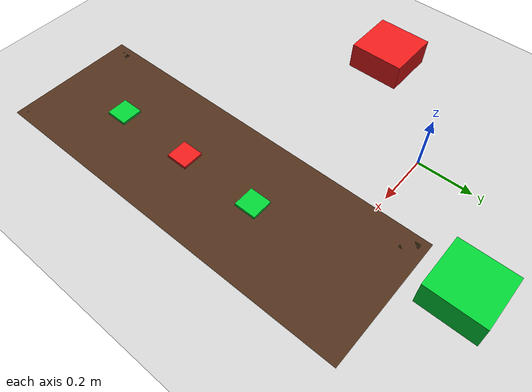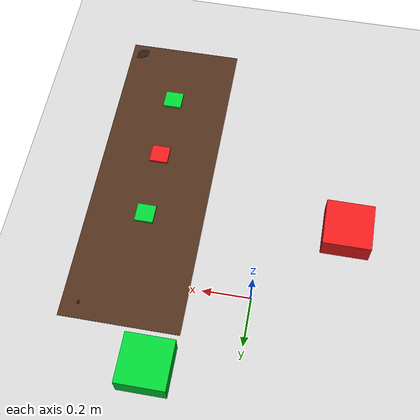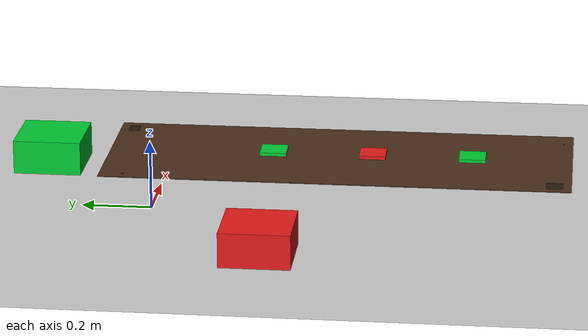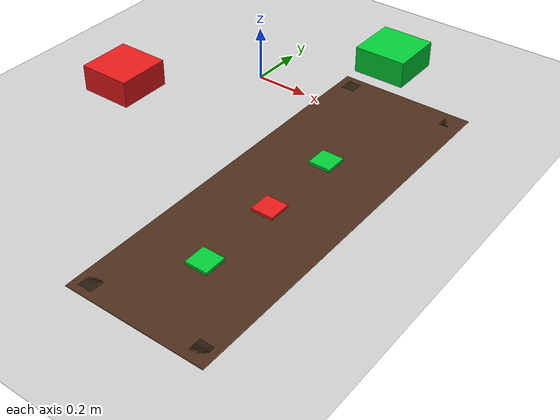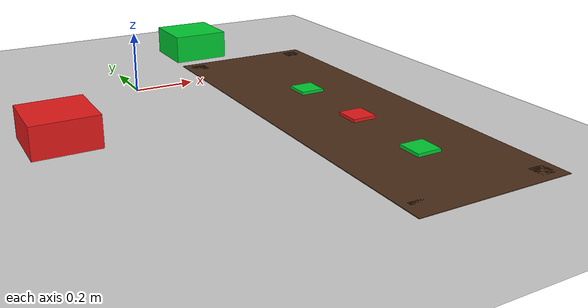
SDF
<?xml version="1.0"?>
<sdf version="1.9">
  <world name="inspectra_world">
    <physics name="1ms" type="ignored">
      <max_step_size>0.001</max_step_size>
      <real_time_factor>1.0</real_time_factor>
    </physics>
    <plugin filename="gz-sim-physics-system" name="gz::sim::systems::Physics"/>
    <plugin filename="gz-sim-scene-broadcaster-system" name="gz::sim::systems::SceneBroadcaster"/>
    <plugin filename="gz-sim-user-commands-system" name="gz::sim::systems::UserCommands"/>
    <plugin filename="gz-sim-sensors-system" name="gz::sim::systems::Sensors">
      <render_engine>ogre2</render_engine>
    </plugin>

    <light type="directional" name="sun">
      <cast_shadows>true</cast_shadows>
      <pose>0 0 10 0 0 0</pose>
      <diffuse>0.9 0.9 0.85 1</diffuse>
      <specular>0.3 0.3 0.3 1</specular>
      <direction>-0.5 0.1 -0.9</direction>
    </light>

    <!-- Fill light: softens harsh shadows from the main sun light,
         angled toward the robot/conveyor area for a more "rendered" look -->
    <light type="point" name="fill_light">
      <pose>1.2 -0.8 1.8 0 0 0</pose>
      <diffuse>0.5 0.5 0.55 1</diffuse>
      <specular>0.1 0.1 0.1 1</specular>
      <attenuation>
        <range>8</range>
        <constant>0.3</constant>
        <linear>0.2</linear>
        <quadratic>0.02</quadratic>
      </attenuation>
      <cast_shadows>false</cast_shadows>
    </light>

    <!-- Rim/back light: adds a subtle highlight edge to the robot from behind,
         helps it visually separate from the background -->
    <light type="point" name="rim_light">
      <pose>-0.5 0.8 1.5 0 0 0</pose>
      <diffuse>0.4 0.4 0.5 1</diffuse>
      <specular>0.1 0.1 0.1 1</specular>
      <attenuation>
        <range>6</range>
        <constant>0.3</constant>
        <linear>0.2</linear>
        <quadratic>0.02</quadratic>
      </attenuation>
      <cast_shadows>false</cast_shadows>
    </light>

    <model name="ground_plane">
      <static>true</static>
      <link name="link">
        <collision name="collision">
          <geometry><plane><normal>0 0 1</normal><size>100 100</size></plane></geometry>
        </collision>
        <visual name="visual">
          <geometry><plane><normal>0 0 1</normal><size>100 100</size></plane></geometry>
          <material><ambient>0.8 0.8 0.8 1</ambient><diffuse>0.8 0.8 0.8 1</diffuse></material>
        </visual>
      </link>
    </model>
    <!-- Conveyor: table-style, raised belt surface on 4 legs -->
    <model name="conveyor_belt">
      <static>true</static>
      <pose>0.5 -0.5 0 0 0 0</pose>
      <link name="belt_link">
        <!-- Belt surface (top), sits at z=0 to match table_plane_z used by pose_estimator -->
        <visual name="belt_surface_visual">
          <pose>0 0 -0.02 0 0 0</pose>
          <geometry><box><size>0.5 1.4 0.04</size></box></geometry>
          <material><ambient>0.30 0.18 0.10 1</ambient><diffuse>0.30 0.18 0.10 1</diffuse><specular>0.15 0.10 0.06 1</specular></material>
        </visual>
        <collision name="belt_surface_collision">
          <pose>0 0 -0.02 0 0 0</pose>
          <geometry><box><size>0.5 1.4 0.04</size></box></geometry>
        </collision>

        <!-- 4 legs at the actual 4 corners of the 0.5 x 1.4m belt surface -->
        <visual name="leg_1_visual">
          <pose>0.2 -0.65 -0.02 0 0 0</pose>
          <geometry><box><size>0.05 0.05 0.04</size></box></geometry>
          <material><ambient>0.15 0.1 0.05 1</ambient><diffuse>0.15 0.1 0.05 1</diffuse></material>
        </visual>
        <collision name="leg_1_collision">
          <pose>0.2 -0.65 -0.02 0 0 0</pose>
          <geometry><box><size>0.05 0.05 0.04</size></box></geometry>
        </collision>

        <visual name="leg_2_visual">
          <pose>-0.2 -0.65 -0.02 0 0 0</pose>
          <geometry><box><size>0.05 0.05 0.04</size></box></geometry>
          <material><ambient>0.15 0.1 0.05 1</ambient><diffuse>0.15 0.1 0.05 1</diffuse></material>
        </visual>
        <collision name="leg_2_collision">
          <pose>-0.2 -0.65 -0.02 0 0 0</pose>
          <geometry><box><size>0.05 0.05 0.04</size></box></geometry>
        </collision>

        <visual name="leg_3_visual">
          <pose>0.2 0.65 -0.02 0 0 0</pose>
          <geometry><box><size>0.05 0.05 0.04</size></box></geometry>
          <material><ambient>0.15 0.1 0.05 1</ambient><diffuse>0.15 0.1 0.05 1</diffuse></material>
        </visual>
        <collision name="leg_3_collision">
          <pose>0.2 0.65 -0.02 0 0 0</pose>
          <geometry><box><size>0.05 0.05 0.04</size></box></geometry>
        </collision>

        <visual name="leg_4_visual">
          <pose>-0.2 0.65 -0.02 0 0 0</pose>
          <geometry><box><size>0.05 0.05 0.04</size></box></geometry>
          <material><ambient>0.15 0.1 0.05 1</ambient><diffuse>0.15 0.1 0.05 1</diffuse></material>
        </visual>
        <collision name="leg_4_collision">
          <pose>-0.2 0.65 -0.02 0 0 0</pose>
          <geometry><box><size>0.05 0.05 0.04</size></box></geometry>
        </collision>
      </link>
    </model>

    <!-- 3 PCB models on the conveyor (moved by conveyor_motion_node) -->
    <model name="pcb_1">
      <static>true</static>
      <pose>0.5 -0.9 0.012 0 0 0</pose>
      <link name="pcb_link">
        <visual name="pcb_visual">
          <geometry><box><size>0.08 0.08 0.01</size></box></geometry>
          <material><ambient>0.0 0.8 0.2 1</ambient><diffuse>0.0 0.8 0.2 1</diffuse></material>
        </visual>
        <collision name="pcb_collision">
          <geometry><box><size>0.08 0.08 0.01</size></box></geometry>
        </collision>
      </link>
    </model>
    <model name="pcb_2">
      <static>true</static>
      <pose>0.5 -0.6 0.012 0 0 0</pose>
      <link name="pcb_link">
        <visual name="pcb_visual">
          <geometry><box><size>0.08 0.08 0.01</size></box></geometry>
          <material><ambient>0.9 0.1 0.1 1</ambient><diffuse>0.9 0.1 0.1 1</diffuse></material>
        </visual>
        <collision name="pcb_collision">
          <geometry><box><size>0.08 0.08 0.01</size></box></geometry>
        </collision>
      </link>
    </model>
    <model name="pcb_3">
      <static>true</static>
      <pose>0.5 -0.3 0.012 0 0 0</pose>
      <link name="pcb_link">
        <visual name="pcb_visual">
          <geometry><box><size>0.08 0.08 0.01</size></box></geometry>
          <material><ambient>0.0 0.8 0.2 1</ambient><diffuse>0.0 0.8 0.2 1</diffuse></material>
        </visual>
        <collision name="pcb_collision">
          <geometry><box><size>0.08 0.08 0.01</size></box></geometry>
        </collision>
      </link>
    </model>
    <!-- PASS bin (green, right) -->
    <model name="pass_bin">
      <static>true</static>
      <pose>0.35 0.35 0.05 0 0 0</pose>
      <link name="bin_link">
        <visual name="bin_visual">
          <geometry><box><size>0.2 0.2 0.1</size></box></geometry>
          <material><ambient>0.0 0.8 0.2 1</ambient><diffuse>0.0 0.8 0.2 1</diffuse></material>
        </visual>
        <collision name="bin_collision">
          <geometry><box><size>0.2 0.2 0.1</size></box></geometry>
        </collision>
      </link>
    </model>

    <!-- FAIL bin (red, left) -->
    <model name="fail_bin">
      <static>true</static>
      <pose>-0.35 -0.35 0.05 0 0 0</pose>
      <link name="bin_link">
        <visual name="bin_visual">
          <geometry><box><size>0.2 0.2 0.1</size></box></geometry>
          <material><ambient>0.9 0.1 0.1 1</ambient><diffuse>0.9 0.1 0.1 1</diffuse></material>
        </visual>
        <collision name="bin_collision">
          <geometry><box><size>0.2 0.2 0.1</size></box></geometry>
        </collision>
      </link>
    </model>
  </world>
</sdf>
